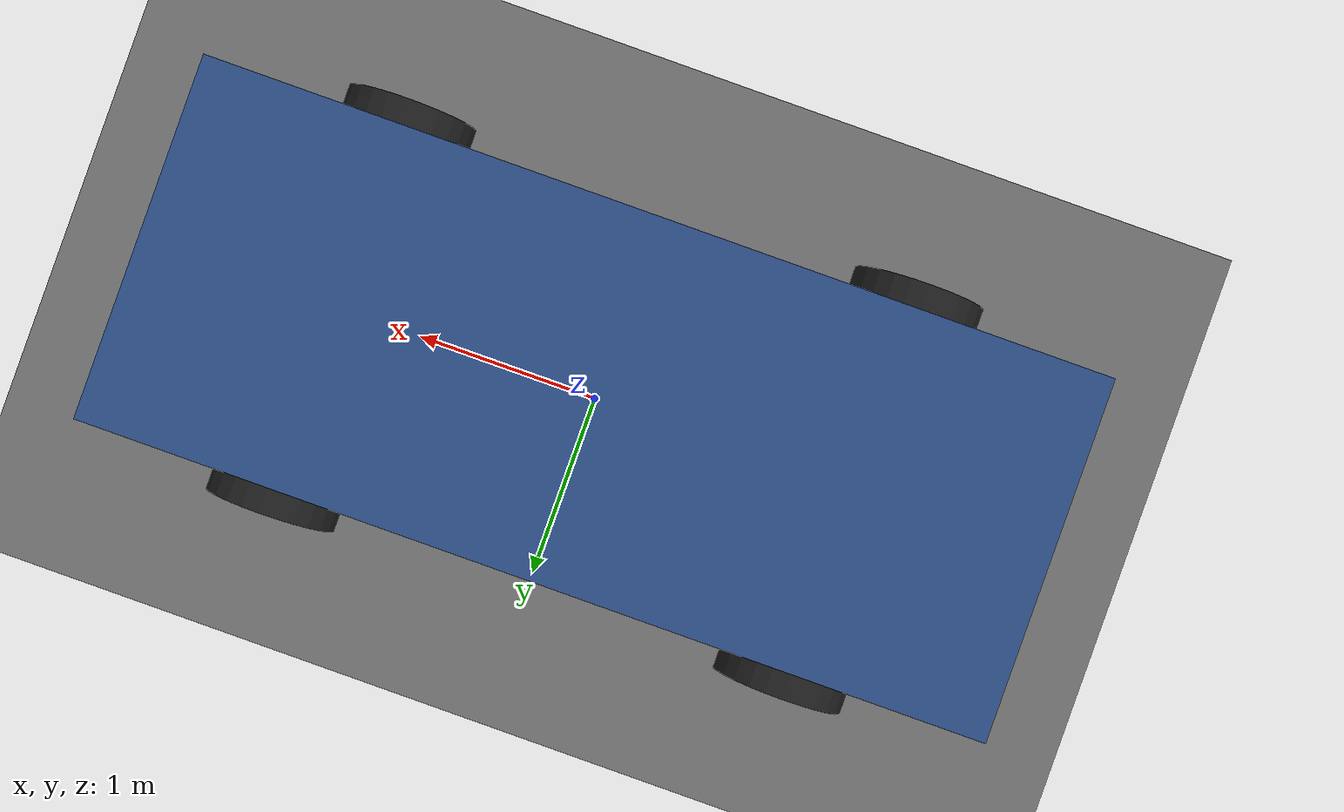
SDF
<?xml version="1.0" ?>
<sdf version="1.9">
  <world name="chambers_vehicle_world">

    <!-- Physics -->
    <physics name="default_physics" type="ode">
      <max_step_size>0.001</max_step_size>
      <real_time_factor>1.0</real_time_factor>
      <real_time_update_rate>1000</real_time_update_rate>
    </physics>

    <!-- Plugins -->
    <plugin filename="gz-sim-physics-system" name="gz::sim::systems::Physics"/>
    <plugin filename="gz-sim-user-commands-system" name="gz::sim::systems::UserCommands"/>
    <plugin filename="gz-sim-scene-broadcaster-system" name="gz::sim::systems::SceneBroadcaster"/>
    <plugin filename="gz-sim-sensors-system" name="gz::sim::systems::Sensors">
      <render_engine>ogre2</render_engine>
    </plugin>
    <plugin filename="gz-sim-imu-system" name="gz::sim::systems::Imu"/>
    <plugin filename="gz-sim-navsat-system" name="gz::sim::systems::NavSat"/>
    <plugin filename="gz-sim-contact-system" name="gz::sim::systems::Contact"/>

    <!-- Scene -->
    <scene>
      <ambient>0.8 0.8 0.8 1.0</ambient>
      <background>0.3 0.5 0.8 1.0</background>
      <shadows>true</shadows>
    </scene>

    <!-- Sun -->
    <light type="directional" name="sun">
      <cast_shadows>true</cast_shadows>
      <pose>0 0 10 0 0 0</pose>
      <diffuse>1.0 1.0 1.0 1</diffuse>
      <specular>0.5 0.5 0.5 1</specular>
      <direction>-0.5 0.1 -0.9</direction>
    </light>

    <!-- Ground plane -->
    <model name="ground_plane">
      <static>true</static>
      <link name="link">
        <collision name="collision">
          <geometry>
            <plane>
              <normal>0 0 1</normal>
              <size>500 500</size>
            </plane>
          </geometry>
          <surface>
            <friction>
              <ode>
                <mu>100</mu>
                <mu2>50</mu2>
              </ode>
            </friction>
          </surface>
        </collision>
        <visual name="visual">
          <geometry>
            <plane>
              <normal>0 0 1</normal>
              <size>500 500</size>
            </plane>
          </geometry>
          <material>
            <ambient>0.4 0.4 0.4 1</ambient>
            <diffuse>0.5 0.5 0.5 1</diffuse>
          </material>
        </visual>
      </link>
    </model>

    <!-- VEHICLE MODEL                                                     -->
    <model name="chambers_vehicle">
      <pose>0 0 0.4 0 0 0</pose>

      <!-- CHASSIS                                                       -->
      <link name="chassis">
        <pose>0 0 0.35 0 0 0</pose>
        <inertial>
          <mass>1500.0</mass>
          <inertia>
            <ixx>337.5</ixx>
            <iyy>843.75</iyy>
            <iyz>0</iyz>
            <izz>618.75</izz>
            <ixy>0</ixy>
            <ixz>0</ixz>
          </inertia>
        </inertial>

        <collision name="chassis_collision">
          <geometry>
            <box>
              <size>4.5 1.8 1.5</size>
            </box>
          </geometry>
        </collision>

        <visual name="chassis_visual">
          <geometry>
            <box>
              <size>4.5 1.8 1.5</size>
            </box>
          </geometry>
          <material>
            <ambient>0.15 0.25 0.45 1</ambient>
            <diffuse>0.2 0.35 0.6 1</diffuse>
            <specular>0.8 0.8 0.8 1</specular>
          </material>
        </visual>

        <!-- SENSORS                                                     -->

        <!-- Front RGB Camera -->
        <sensor name="front_camera" type="camera">
          <pose>2.1 0 0.6 0 0 0</pose>
          <always_on>true</always_on>
          <update_rate>10</update_rate>
          <visualize>true</visualize>
          <topic>chambers/camera/front/image_raw</topic>
          <camera>
            <horizontal_fov>1.5708</horizontal_fov> <!-- 90 degrees -->
            <image>
              <width>1280</width>
              <height>720</height>
              <format>R8G8B8</format>
            </image>
            <clip>
              <near>0.1</near>
              <far>300.0</far>
            </clip>
            <noise>
              <type>gaussian</type>
              <mean>0.0</mean>
              <stddev>0.007</stddev>
            </noise>
          </camera>
        </sensor>

        <!-- Roof LiDAR -->
        <sensor name="roof_lidar" type="gpu_lidar">
          <pose>0 0 1.3 0 0 0</pose>
          <always_on>true</always_on>
          <update_rate>10</update_rate>
          <visualize>true</visualize>
          <topic>chambers/lidar/roof/points</topic>
          <lidar>
            <scan>
              <horizontal>
                <samples>1800</samples>
                <resolution>1</resolution>
                <min_angle>-3.14159</min_angle>
                <max_angle>3.14159</max_angle>
              </horizontal>
              <vertical>
                <samples>32</samples>
                <resolution>1</resolution>
                <min_angle>-0.5236</min_angle>  <!-- -30 degrees -->
                <max_angle>0.1745</max_angle>   <!-- +10 degrees -->
              </vertical>
            </scan>
            <range>
              <min>0.5</min>
              <max>100.0</max>
              <resolution>0.01</resolution>
            </range>
            <noise>
              <type>gaussian</type>
              <mean>0.0</mean>
              <stddev>0.02</stddev>
            </noise>
          </lidar>
        </sensor>

        <!-- IMU -->
        <sensor name="imu_sensor" type="imu">
          <pose>0 0 0 0 0 0</pose>
          <always_on>true</always_on>
          <update_rate>100</update_rate>
          <topic>chambers/imu/data</topic>
          <imu>
            <angular_velocity>
              <x>
                <noise type="gaussian">
                  <mean>0.0</mean>
                  <stddev>0.01</stddev>
                </noise>
              </x>
              <y>
                <noise type="gaussian">
                  <mean>0.0</mean>
                  <stddev>0.01</stddev>
                </noise>
              </y>
              <z>
                <noise type="gaussian">
                  <mean>0.0</mean>
                  <stddev>0.01</stddev>
                </noise>
              </z>
            </angular_velocity>
            <linear_acceleration>
              <x>
                <noise type="gaussian">
                  <mean>0.0</mean>
                  <stddev>0.1</stddev>
                </noise>
              </x>
              <y>
                <noise type="gaussian">
                  <mean>0.0</mean>
                  <stddev>0.1</stddev>
                </noise>
              </y>
              <z>
                <noise type="gaussian">
                  <mean>0.0</mean>
                  <stddev>0.1</stddev>
                </noise>
              </z>
            </linear_acceleration>
          </imu>
        </sensor>

        <!-- NavSat (GPS) -->
        <sensor name="gps_sensor" type="navsat">
          <pose>0 0 0.8 0 0 0</pose>
          <always_on>true</always_on>
          <update_rate>10</update_rate>
          <topic>chambers/navsat/fix</topic>
          <navsat>
            <position_sensing>
              <horizontal>
                <noise type="gaussian">
                  <mean>0.0</mean>
                  <stddev>1.0</stddev>
                </noise>
              </horizontal>
              <vertical>
                <noise type="gaussian">
                  <mean>0.0</mean>
                  <stddev>2.0</stddev>
                </noise>
              </vertical>
            </position_sensing>
            <velocity_sensing>
              <horizontal>
                <noise type="gaussian">
                  <mean>0.0</mean>
                  <stddev>0.1</stddev>
                </noise>
              </horizontal>
              <vertical>
                <noise type="gaussian">
                  <mean>0.0</mean>
                  <stddev>0.2</stddev>
                </noise>
              </vertical>
            </velocity_sensing>
          </navsat>
        </sensor>

      </link>

      <!-- WHEELS                                                        -->

      <!-- Front Left Wheel -->
      <link name="front_left_wheel">
        <pose>1.4 1.0 0 -1.5708 0 0</pose>
        <inertial>
          <mass>15.0</mass>
          <inertia>
            <ixx>0.3375</ixx>
            <iyy>0.3375</iyy>
            <izz>0.5625</izz>
            <ixy>0</ixy>
            <ixz>0</ixz>
            <iyz>0</iyz>
          </inertia>
        </inertial>
        <collision name="collision">
          <geometry>
            <cylinder>
              <radius>0.35</radius>
              <length>0.22</length>
            </cylinder>
          </geometry>
          <surface>
            <friction>
              <ode>
                <mu>1.0</mu>
                <mu2>0.8</mu2>
              </ode>
            </friction>
          </surface>
        </collision>
        <visual name="visual">
          <geometry>
            <cylinder>
              <radius>0.35</radius>
              <length>0.22</length>
            </cylinder>
          </geometry>
          <material>
            <ambient>0.1 0.1 0.1 1</ambient>
            <diffuse>0.15 0.15 0.15 1</diffuse>
          </material>
        </visual>
      </link>

      <!-- Front Right Wheel -->
      <link name="front_right_wheel">
        <pose>1.4 -1.0 0 -1.5708 0 0</pose>
        <inertial>
          <mass>15.0</mass>
          <inertia>
            <ixx>0.3375</ixx>
            <iyy>0.3375</iyy>
            <izz>0.5625</izz>
            <ixy>0</ixy>
            <ixz>0</ixz>
            <iyz>0</iyz>
          </inertia>
        </inertial>
        <collision name="collision">
          <geometry>
            <cylinder>
              <radius>0.35</radius>
              <length>0.22</length>
            </cylinder>
          </geometry>
          <surface>
            <friction>
              <ode>
                <mu>1.0</mu>
                <mu2>0.8</mu2>
              </ode>
            </friction>
          </surface>
        </collision>
        <visual name="visual">
          <geometry>
            <cylinder>
              <radius>0.35</radius>
              <length>0.22</length>
            </cylinder>
          </geometry>
          <material>
            <ambient>0.1 0.1 0.1 1</ambient>
            <diffuse>0.15 0.15 0.15 1</diffuse>
          </material>
        </visual>
      </link>

      <!-- Rear Left Wheel -->
      <link name="rear_left_wheel">
        <pose>-1.4 1.0 0 -1.5708 0 0</pose>
        <inertial>
          <mass>15.0</mass>
          <inertia>
            <ixx>0.3375</ixx>
            <iyy>0.3375</iyy>
            <izz>0.5625</izz>
            <ixy>0</ixy>
            <ixz>0</ixz>
            <iyz>0</iyz>
          </inertia>
        </inertial>
        <collision name="collision">
          <geometry>
            <cylinder>
              <radius>0.35</radius>
              <length>0.22</length>
            </cylinder>
          </geometry>
          <surface>
            <friction>
              <ode>
                <mu>1.0</mu>
                <mu2>0.8</mu2>
              </ode>
            </friction>
          </surface>
        </collision>
        <visual name="visual">
          <geometry>
            <cylinder>
              <radius>0.35</radius>
              <length>0.22</length>
            </cylinder>
          </geometry>
          <material>
            <ambient>0.1 0.1 0.1 1</ambient>
            <diffuse>0.15 0.15 0.15 1</diffuse>
          </material>
        </visual>
      </link>

      <!-- Rear Right Wheel -->
      <link name="rear_right_wheel">
        <pose>-1.4 -1.0 0 -1.5708 0 0</pose>
        <inertial>
          <mass>15.0</mass>
          <inertia>
            <ixx>0.3375</ixx>
            <iyy>0.3375</iyy>
            <izz>0.5625</izz>
            <ixy>0</ixy>
            <ixz>0</ixz>
            <iyz>0</iyz>
          </inertia>
        </inertial>
        <collision name="collision">
          <geometry>
            <cylinder>
              <radius>0.35</radius>
              <length>0.22</length>
            </cylinder>
          </geometry>
          <surface>
            <friction>
              <ode>
                <mu>1.0</mu>
                <mu2>0.8</mu2>
              </ode>
            </friction>
          </surface>
        </collision>
        <visual name="visual">
          <geometry>
            <cylinder>
              <radius>0.35</radius>
              <length>0.22</length>
            </cylinder>
          </geometry>
          <material>
            <ambient>0.1 0.1 0.1 1</ambient>
            <diffuse>0.15 0.15 0.15 1</diffuse>
          </material>
        </visual>
      </link>

      <!-- JOINTS                                                        -->

      <joint name="front_left_wheel_joint" type="revolute">
        <parent>chassis</parent>
        <child>front_left_wheel</child>
        <axis>
          <xyz>0 0 1</xyz>
          <limit>
            <lower>-1e16</lower>
            <upper>1e16</upper>
          </limit>
          <dynamics>
            <damping>0.5</damping>
            <friction>0.5</friction>
          </dynamics>
        </axis>
      </joint>

      <joint name="front_right_wheel_joint" type="revolute">
        <parent>chassis</parent>
        <child>front_right_wheel</child>
        <axis>
          <xyz>0 0 1</xyz>
          <limit>
            <lower>-1e16</lower>
            <upper>1e16</upper>
          </limit>
          <dynamics>
            <damping>0.5</damping>
            <friction>0.5</friction>
          </dynamics>
        </axis>
      </joint>

      <joint name="rear_left_wheel_joint" type="revolute">
        <parent>chassis</parent>
        <child>rear_left_wheel</child>
        <axis>
          <xyz>0 0 1</xyz>
          <limit>
            <lower>-1e16</lower>
            <upper>1e16</upper>
          </limit>
          <dynamics>
            <damping>0.5</damping>
            <friction>0.5</friction>
          </dynamics>
        </axis>
      </joint>

      <joint name="rear_right_wheel_joint" type="revolute">
        <parent>chassis</parent>
        <child>rear_right_wheel</child>
        <axis>
          <xyz>0 0 1</xyz>
          <limit>
            <lower>-1e16</lower>
            <upper>1e16</upper>
          </limit>
          <dynamics>
            <damping>0.5</damping>
            <friction>0.5</friction>
          </dynamics>
        </axis>
      </joint>

      <!-- DIFF DRIVE PLUGIN                                             -->
      <plugin
        filename="gz-sim-diff-drive-system"
        name="gz::sim::systems::DiffDrive">
        <left_joint>front_left_wheel_joint</left_joint>
        <left_joint>rear_left_wheel_joint</left_joint>
        <right_joint>front_right_wheel_joint</right_joint>
        <right_joint>rear_right_wheel_joint</right_joint>
        <wheel_separation>2.0</wheel_separation>
        <wheel_radius>0.35</wheel_radius>
        <max_linear_acceleration>3.0</max_linear_acceleration>
        <min_linear_acceleration>-5.0</min_linear_acceleration>
        <max_angular_acceleration>2.0</max_angular_acceleration>
        <min_angular_acceleration>-2.0</min_angular_acceleration>
        <odom_publish_frequency>50</odom_publish_frequency>
        <topic>chambers/cmd_vel</topic>
        <odom_topic>chambers/odom</odom_topic>
        <frame_id>odom</frame_id>
        <child_frame_id>base_link</child_frame_id>
      </plugin>

      <!-- Joint state publisher -->
      <plugin
        filename="gz-sim-joint-state-publisher-system"
        name="gz::sim::systems::JointStatePublisher">
        <topic>chambers/joint_states</topic>
      </plugin>

    </model>

    <!-- Spherical coordinates for NavSat (Munich, Germany) -->
    <spherical_coordinates>
      <surface_model>EARTH_WGS84</surface_model>
      <latitude_deg>48.1351</latitude_deg>
      <longitude_deg>11.5820</longitude_deg>
      <elevation>520</elevation>
      <heading_deg>0</heading_deg>
    </spherical_coordinates>

  </world>
</sdf>
